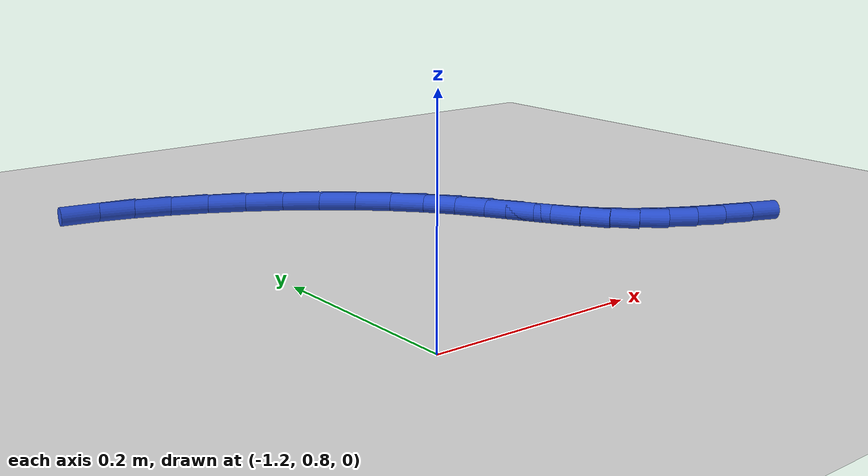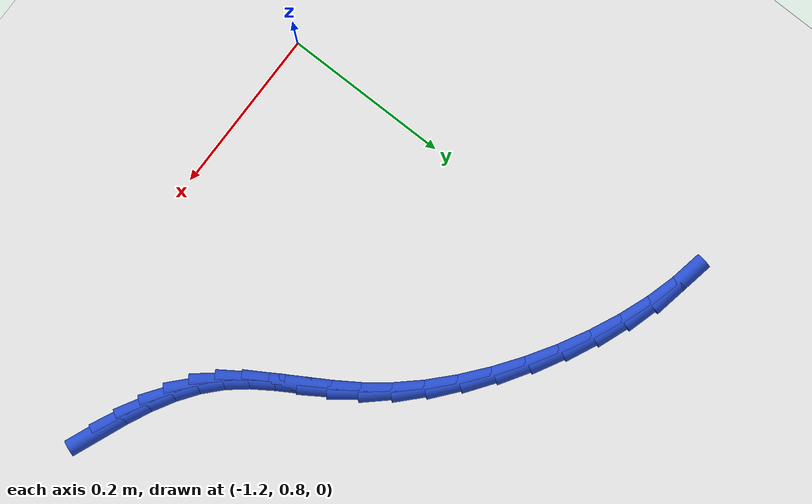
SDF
<sdf version="1.6">
 <world name="default">
  <model name="ground_plane">
   <static>1</static>
   <link name="link">
    <collision name="collision">
     <geometry><plane><normal>0 0 1</normal><size>100 100</size></plane></geometry>
     <surface><friction><ode><mu>100</mu><mu2>50</mu2></ode></friction></surface>
    </collision>
    <visual name="visual">
     <cast_shadows>0</cast_shadows>
     <geometry><plane><normal>0 0 1</normal><size>100 100</size></plane></geometry>
     <material>
      <script><uri>file://media/materials/scripts/gazebo.material</uri><name>Gazebo/WhiteGlow</name></script>
     </material>
    </visual>
   </link>
  </model>
  <model name="line">
   <link name="link_38">
    <pose>-0.7109944466661047 0.8950523649245756 0.01 0 1.57 -0.3821489786543776</pose>
    <collision name="collision">
     <geometry><cylinder><radius>0.01</radius><length>0.08</length></cylinder></geometry>
    </collision>
    <visual name="visual">
     <material>
      <script><name>Gazebo/Blue</name><uri>file://media/materials/scripts/gazebo.material</uri></script>
     </material>
     <geometry><cylinder><radius>0.01</radius><length>0.08</length></cylinder></geometry>
    </visual>
   </link>
   <link name="link_39">
    <pose>-0.741121520693638 0.9071606369920532 0.01 0 1.57 -0.43678056641381036</pose>
    <collision name="collision">
     <geometry><cylinder><radius>0.01</radius><length>0.08</length></cylinder></geometry>
    </collision>
    <visual name="visual">
     <material>
      <script><name>Gazebo/Blue</name><uri>file://media/materials/scripts/gazebo.material</uri></script>
     </material>
     <geometry><cylinder><radius>0.01</radius><length>0.08</length></cylinder></geometry>
    </visual>
   </link>
   <link name="link_40">
    <pose>-0.7697712694302705 0.9205358723261201 0.01 0 1.57 -0.5132736186744208</pose>
    <collision name="collision">
     <geometry><cylinder><radius>0.01</radius><length>0.08</length></cylinder></geometry>
    </collision>
    <visual name="visual">
     <material>
      <script><name>Gazebo/Blue</name><uri>file://media/materials/scripts/gazebo.material</uri></script>
     </material>
     <geometry><cylinder><radius>0.01</radius><length>0.08</length></cylinder></geometry>
    </visual>
   </link>
   <link name="link_41">
    <pose>-0.7965177015823152 0.9356118863924064 0.01 0 1.57 -0.6139790102619098</pose>
    <collision name="collision">
     <geometry><cylinder><radius>0.01</radius><length>0.08</length></cylinder></geometry>
    </collision>
    <visual name="visual">
     <material>
      <script><name>Gazebo/Blue</name><uri>file://media/materials/scripts/gazebo.material</uri></script>
     </material>
     <geometry><cylinder><radius>0.01</radius><length>0.08</length></cylinder></geometry>
    </visual>
   </link>
   <link name="link_42">
    <pose>-0.8209348258560843 0.9528224946565423 0.01 0 1.57 -0.7399957735964606</pose>
    <collision name="collision">
     <geometry><cylinder><radius>0.01</radius><length>0.08</length></cylinder></geometry>
    </collision>
    <visual name="visual">
     <material>
      <script><name>Gazebo/Blue</name><uri>file://media/materials/scripts/gazebo.material</uri></script>
     </material>
     <geometry><cylinder><radius>0.01</radius><length>0.08</length></cylinder></geometry>
    </visual>
   </link>
   <link name="link_43">
    <pose>-0.8425966509811885 0.9726015125693708 0.01 0 1.57 -0.8779175972005473</pose>
    <collision name="collision">
     <geometry><cylinder><radius>0.01</radius><length>0.08</length></cylinder></geometry>
    </collision>
    <visual name="visual">
     <material>
      <script><name>Gazebo/Blue</name><uri>file://media/materials/scripts/gazebo.material</uri></script>
     </material>
     <geometry><cylinder><radius>0.01</radius><length>0.08</length></cylinder></geometry>
    </visual>
   </link>
   <link name="link_44">
    <pose>-0.8613602162522479 0.9952031172015621 0.01 0 1.57 -0.9774447620086186</pose>
    <collision name="collision">
     <geometry><cylinder><radius>0.01</radius><length>0.08</length></cylinder></geometry>
    </collision>
    <visual name="visual">
     <material>
      <script><name>Gazebo/Blue</name><uri>file://media/materials/scripts/gazebo.material</uri></script>
     </material>
     <geometry><cylinder><radius>0.01</radius><length>0.08</length></cylinder></geometry>
    </visual>
   </link>
   <link name="link_45">
    <pose>-0.878199941521659 1.020172288603212 0.01 0 1.57 -1.02647708353751</pose>
    <collision name="collision">
     <geometry><cylinder><radius>0.01</radius><length>0.08</length></cylinder></geometry>
    </collision>
    <visual name="visual">
     <material>
      <script><name>Gazebo/Blue</name><uri>file://media/materials/scripts/gazebo.material</uri></script>
     </material>
     <geometry><cylinder><radius>0.01</radius><length>0.08</length></cylinder></geometry>
    </visual>
   </link>
   <link name="link_46">
    <pose>-0.894365954219529 1.0468790163153185 0.01 0 1.57 -1.0289541174394816</pose>
    <collision name="collision">
     <geometry><cylinder><radius>0.01</radius><length>0.08</length></cylinder></geometry>
    </collision>
    <visual name="visual">
     <material>
      <script><name>Gazebo/Blue</name><uri>file://media/materials/scripts/gazebo.material</uri></script>
     </material>
     <geometry><cylinder><radius>0.01</radius><length>0.08</length></cylinder></geometry>
    </visual>
   </link>
   <link name="link_47">
    <pose>-0.9111083817759654 1.0746932898788784 0.01 0 1.57 -0.9899789465877593</pose>
    <collision name="collision">
     <geometry><cylinder><radius>0.01</radius><length>0.08</length></cylinder></geometry>
    </collision>
    <visual name="visual">
     <material>
      <script><name>Gazebo/Blue</name><uri>file://media/materials/scripts/gazebo.material</uri></script>
     </material>
     <geometry><cylinder><radius>0.01</radius><length>0.08</length></cylinder></geometry>
    </visual>
   </link>
   <link name="link_48">
    <pose>-0.9296773516210755 1.1029850988348895 0.01 0 1.57 -0.9154479659616122</pose>
    <collision name="collision">
     <geometry><cylinder><radius>0.01</radius><length>0.08</length></cylinder></geometry>
    </collision>
    <visual name="visual">
     <material>
      <script><name>Gazebo/Blue</name><uri>file://media/materials/scripts/gazebo.material</uri></script>
     </material>
     <geometry><cylinder><radius>0.01</radius><length>0.08</length></cylinder></geometry>
    </visual>
   </link>
   <link name="link_49">
    <pose>-0.95130917641502 1.1311266874326276 0.01 0 1.57 -0.82780920466849</pose>
    <collision name="collision">
     <geometry><cylinder><radius>0.01</radius><length>0.08</length></cylinder></geometry>
    </collision>
    <visual name="visual">
     <material>
      <script><name>Gazebo/Blue</name><uri>file://media/materials/scripts/gazebo.material</uri></script>
     </material>
     <geometry><cylinder><radius>0.01</radius><length>0.08</length></cylinder></geometry>
    </visual>
   </link>
   <link name="link_50">
    <pose>-0.9765485848931763 1.1586031733174933 0.01 0 1.57 -0.750183507608094</pose>
    <collision name="collision">
     <geometry><cylinder><radius>0.01</radius><length>0.08</length></cylinder></geometry>
    </collision>
    <visual name="visual">
     <material>
      <script><name>Gazebo/Blue</name><uri>file://media/materials/scripts/gazebo.material</uri></script>
     </material>
     <geometry><cylinder><radius>0.01</radius><length>0.08</length></cylinder></geometry>
    </visual>
   </link>
   <link name="link_51">
    <pose>-1.0049406259810947 1.1850628318531753 0.01 0 1.57 -0.6805051637333096</pose>
    <collision name="collision">
     <geometry><cylinder><radius>0.01</radius><length>0.08</length></cylinder></geometry>
    </collision>
    <visual name="visual">
     <material>
      <script><name>Gazebo/Blue</name><uri>file://media/materials/scripts/gazebo.material</uri></script>
     </material>
     <geometry><cylinder><radius>0.01</radius><length>0.08</length></cylinder></geometry>
    </visual>
   </link>
   <link name="link_52">
    <pose>-1.0359522803015115 1.2101666799292319 0.01 0 1.57 -0.6155815954547789</pose>
    <collision name="collision">
     <geometry><cylinder><radius>0.01</radius><length>0.08</length></cylinder></geometry>
    </collision>
    <visual name="visual">
     <material>
      <script><name>Gazebo/Blue</name><uri>file://media/materials/scripts/gazebo.material</uri></script>
     </material>
     <geometry><cylinder><radius>0.01</radius><length>0.08</length></cylinder></geometry>
    </visual>
   </link>
   <link name="link_53">
    <pose>-1.0690505284771623 1.2335757344352194 0.01 0 1.57 -0.5527234555478191</pose>
    <collision name="collision">
     <geometry><cylinder><radius>0.01</radius><length>0.08</length></cylinder></geometry>
    </collision>
    <visual name="visual">
     <material>
      <script><name>Gazebo/Blue</name><uri>file://media/materials/scripts/gazebo.material</uri></script>
     </material>
     <geometry><cylinder><radius>0.01</radius><length>0.08</length></cylinder></geometry>
    </visual>
   </link>
   <link name="link_54">
    <pose>-1.1037023511307842 1.2549510122606977 0.01 0 1.57 -0.4894606756892485</pose>
    <collision name="collision">
     <geometry><cylinder><radius>0.01</radius><length>0.08</length></cylinder></geometry>
    </collision>
    <visual name="visual">
     <material>
      <script><name>Gazebo/Blue</name><uri>file://media/materials/scripts/gazebo.material</uri></script>
     </material>
     <geometry><cylinder><radius>0.01</radius><length>0.08</length></cylinder></geometry>
    </visual>
   </link>
   <link name="link_55">
    <pose>-1.1393747288851126 1.2739535302952232 0.01 0 1.57 -0.423286525286652</pose>
    <collision name="collision">
     <geometry><cylinder><radius>0.01</radius><length>0.08</length></cylinder></geometry>
    </collision>
    <visual name="visual">
     <material>
      <script><name>Gazebo/Blue</name><uri>file://media/materials/scripts/gazebo.material</uri></script>
     </material>
     <geometry><cylinder><radius>0.01</radius><length>0.08</length></cylinder></geometry>
    </visual>
   </link>
   <link name="link_56">
    <pose>-1.175534642362884 1.2902443054283539 0.01 0 1.57 -0.3513982105993717</pose>
    <collision name="collision">
     <geometry><cylinder><radius>0.01</radius><length>0.08</length></cylinder></geometry>
    </collision>
    <visual name="visual">
     <material>
      <script><name>Gazebo/Blue</name><uri>file://media/materials/scripts/gazebo.material</uri></script>
     </material>
     <geometry><cylinder><radius>0.01</radius><length>0.08</length></cylinder></geometry>
    </visual>
   </link>
   <link name="link_57">
    <pose>-1.2116490721868352 1.3034843545496482 0.01 0 1.57 -0.2704046601474207</pose>
    <collision name="collision">
     <geometry><cylinder><radius>0.01</radius><length>0.08</length></cylinder></geometry>
    </collision>
    <visual name="visual">
     <material>
      <script><name>Gazebo/Blue</name><uri>file://media/materials/scripts/gazebo.material</uri></script>
     </material>
     <geometry><cylinder><radius>0.01</radius><length>0.08</length></cylinder></geometry>
    </visual>
   </link>
   <link name="link_58">
    <pose>-1.2471849989797017 1.3133346945486633 0.01 0 1.57 -0.17598900648020238</pose>
    <collision name="collision">
     <geometry><cylinder><radius>0.01</radius><length>0.08</length></cylinder></geometry>
    </collision>
    <visual name="visual">
     <material>
      <script><name>Gazebo/Blue</name><uri>file://media/materials/scripts/gazebo.material</uri></script>
     </material>
     <geometry><cylinder><radius>0.01</radius><length>0.08</length></cylinder></geometry>
    </visual>
   </link>
  </model>
 </world>
</sdf>
